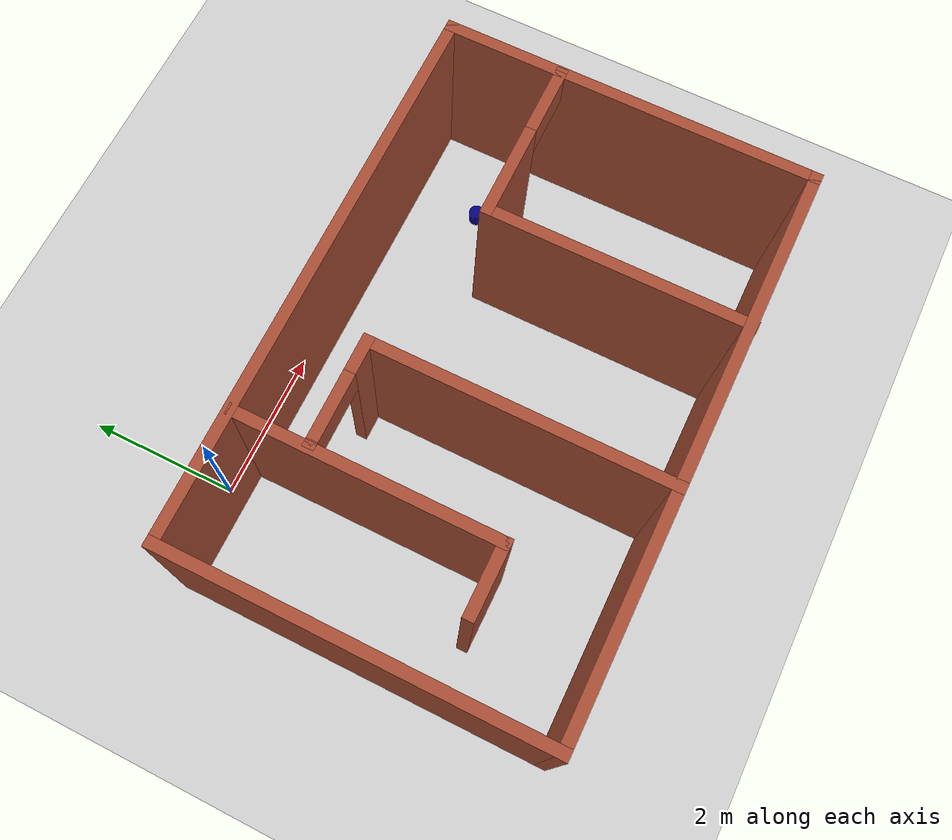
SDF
<sdf version="1.7">
 <world name="custom_world">
  <model name="cylinder1">
   <pose>5 -2.15 0.1 0 0 0</pose>
   <static>false</static>
   <link name="base_link1">
    <inertial>
     <mass>1.0</mass>
     <inertia><ixx>0.01</ixx><iyy>0.01</iyy><izz>0.02</izz><ixy>0.0</ixy><ixz>0.0</ixz><iyz>0.0</iyz></inertia>
    </inertial>
    <visual name="visual1">
     <geometry><cylinder><radius>0.1</radius><length>0.2</length></cylinder></geometry>
     <material><ambient>0 0.5 0 1</ambient></material>
    </visual>
    <collision name="collision1">
     <geometry><cylinder><radius>0.1</radius><length>0.2</length></cylinder></geometry>
    </collision>
   </link>
   <plugin name="cylinder1_plugin" filename="/home/shubham/tb3opnx_ws/devel/lib/libcylinder_plugin.so"/>
  </model>
  <model name="cylinder2">
   <pose>5 -1.15 0.1 0 0 0</pose>
   <static>false</static>
   <link name="base_link2">
    <inertial>
     <mass>1.0</mass>
     <inertia><ixx>0.01</ixx><iyy>0.01</iyy><izz>0.02</izz><ixy>0.0</ixy><ixz>0.0</ixz><iyz>0.0</iyz></inertia>
    </inertial>
    <visual name="visual2">
     <geometry><cylinder><radius>0.1</radius><length>0.2</length></cylinder></geometry>
     <material><ambient>0 0 0.5 1</ambient></material>
    </visual>
    <collision name="collision2">
     <geometry><cylinder><radius>0.1</radius><length>0.2</length></cylinder></geometry>
    </collision>
   </link>
   <plugin name="cylinder2_plugin" filename="/home/shubham/tb3opnx_ws/devel/lib/libcylinder_plugin.so"/>
  </model>
  <light name="sun" type="directional">
   <pose>0 0 10 0 -0 0</pose>
   <diffuse>0.8 0.8 0.8 1</diffuse>
   <specular>0.2 0.2 0.2 1</specular>
   <attenuation>
    <range>1000</range>
    <constant>0.9</constant>
    <linear>0.01</linear>
    <quadratic>0.001</quadratic>
   </attenuation>
   <direction>-0.5 0.1 -0.9</direction>
   <spot><inner_angle>0</inner_angle><outer_angle>0</outer_angle><falloff>0</falloff></spot>
  </light>
  <model name="ground_plane">
   <static>1</static>
   <link name="link">
    <collision name="collision">
     <geometry><plane><normal>0 0 1</normal><size>100 100</size></plane></geometry>
     <surface><friction><ode><mu>100</mu><mu2>50</mu2></ode></friction></surface>
    </collision>
    <visual name="visual">
     <cast_shadows>0</cast_shadows>
     <geometry><plane><normal>0 0 1</normal><size>100 100</size></plane></geometry>
     <material>
      <script><uri>file://media/materials/scripts/gazebo.material</uri><name>Gazebo/Grey</name></script>
     </material>
    </visual>
   </link>
  </model>
  <gravity>0 0 -9.8</gravity>
  <magnetic_field>6e-06 2.3e-05 -4.2e-05</magnetic_field>
  <atmosphere type="adiabatic"/>
  <physics type="ode">
   <max_step_size>0.001</max_step_size>
   <real_time_factor>1</real_time_factor>
   <real_time_update_rate>1000</real_time_update_rate>
  </physics>
  <scene><ambient>0.4 0.4 0.4 1</ambient><background>0.7 0.7 0.7 1</background><shadows>1</shadows></scene>
  <spherical_coordinates>
   <surface_model>EARTH_WGS84</surface_model>
   <latitude_deg>0</latitude_deg>
   <longitude_deg>0</longitude_deg>
   <elevation>0</elevation>
   <heading_deg>0</heading_deg>
  </spherical_coordinates>
  <model name="Maze">
   <pose>2.405 -2.5625 0 0 -0 0</pose>
   <link name="Wall_10">
    <collision name="Wall_10_Collision">
     <geometry><box><size>3.5 0.15 2.5</size></box></geometry>
     <pose>0 0 1.25 0 -0 0</pose>
    </collision>
    <visual name="Wall_10_Visual">
     <pose>0 0 1.25 0 -0 0</pose>
     <geometry><box><size>3.5 0.15 2.5</size></box></geometry>
     <material>
      <script><uri>file://media/materials/scripts/gazebo.material</uri><name>Gazebo/Bricks</name></script>
      <ambient>1 1 1 1</ambient>
     </material>
     <meta><layer>0</layer></meta>
    </visual>
    <pose>-1.985 0.6475 0 0 -0 -1.5708</pose>
   </link>
   <link name="Wall_11">
    <collision name="Wall_11_Collision">
     <geometry><box><size>1 0.15 2.5</size></box></geometry>
     <pose>0 0 1.25 0 -0 0</pose>
    </collision>
    <visual name="Wall_11_Visual">
     <pose>0 0 1.25 0 -0 0</pose>
     <geometry><box><size>1 0.15 2.5</size></box></geometry>
     <material>
      <script><uri>file://media/materials/scripts/gazebo.material</uri><name>Gazebo/Bricks</name></script>
      <ambient>1 1 1 1</ambient>
     </material>
     <meta><layer>0</layer></meta>
    </visual>
    <pose>-2.41 -1.0275 0 0 -0 3.14159</pose>
   </link>
   <link name="Wall_14">
    <collision name="Wall_14_Collision">
     <geometry><box><size>4 0.15 2.5</size></box></geometry>
     <pose>0 0 1.25 0 -0 0</pose>
    </collision>
    <visual name="Wall_14_Visual">
     <pose>0 0 1.25 0 -0 0</pose>
     <geometry><box><size>4 0.15 2.5</size></box></geometry>
     <material>
      <script><uri>file://media/materials/scripts/gazebo.material</uri><name>Gazebo/Bricks</name></script>
      <ambient>1 1 1 1</ambient>
     </material>
     <meta><layer>0</layer></meta>
    </visual>
    <pose>-0.575 -0.5525 0 0 -0 1.5708</pose>
   </link>
   <link name="Wall_15">
    <pose>-1.25 1.3725 0 0 -0 3.14159</pose>
    <visual name="Wall_15_Visual_0">
     <pose>-0.5025 0 1.25 0 -0 0</pose>
     <geometry><box><size>0.495 0.15 2.5</size></box></geometry>
     <material>
      <script><uri>file://media/materials/scripts/gazebo.material</uri><name>Gazebo/Bricks</name></script>
      <ambient>1 1 1 1</ambient>
     </material>
     <meta><layer>0</layer></meta>
    </visual>
    <collision name="Wall_15_Collision_0">
     <geometry><box><size>0.495 0.15 2.5</size></box></geometry>
     <pose>-0.5025 0 1.25 0 -0 0</pose>
    </collision>
    <visual name="Wall_15_Visual_1">
     <pose>0.6975 0 1.25 0 -0 0</pose>
     <geometry><box><size>0.105 0.15 2.5</size></box></geometry>
     <material>
      <script><uri>file://media/materials/scripts/gazebo.material</uri><name>Gazebo/Bricks</name></script>
      <ambient>1 1 1 1</ambient>
     </material>
     <meta><layer>0</layer></meta>
    </visual>
    <collision name="Wall_15_Collision_1">
     <geometry><box><size>0.105 0.15 2.5</size></box></geometry>
     <pose>0.6975 0 1.25 0 -0 0</pose>
    </collision>
    <visual name="Wall_15_Visual_2">
     <pose>0.195 0 2.25 0 -0 0</pose>
     <geometry><box><size>0.9 0.15 0.5</size></box></geometry>
     <material>
      <script><uri>file://media/materials/scripts/gazebo.material</uri><name>Gazebo/Bricks</name></script>
      <ambient>1 1 1 1</ambient>
     </material>
     <meta><layer>0</layer></meta>
    </visual>
    <collision name="Wall_15_Collision_2">
     <geometry><box><size>0.9 0.15 0.5</size></box></geometry>
     <pose>0.195 0 2.25 0 -0 0</pose>
    </collision>
   </link>
   <link name="Wall_17">
    <collision name="Wall_17_Collision">
     <geometry><box><size>3.5 0.15 2.5</size></box></geometry>
     <pose>0 0 1.25 0 -0 0</pose>
    </collision>
    <visual name="Wall_17_Visual">
     <pose>0 0 1.25 0 -0 0</pose>
     <geometry><box><size>3.5 0.15 2.5</size></box></geometry>
     <material>
      <script><uri>file://media/materials/scripts/gazebo.material</uri><name>Gazebo/Bricks</name></script>
      <ambient>1 1 1 1</ambient>
     </material>
     <meta><layer>0</layer></meta>
    </visual>
    <pose>1.555 -0.8125 0 0 -0 1.5708</pose>
   </link>
   <link name="Wall_18">
    <pose>2.605 0.8625 0 0 -0 0</pose>
    <visual name="Wall_18_Visual_0">
     <pose>-0.4775 0 1.25 0 -0 0</pose>
     <geometry><box><size>1.295 0.15 2.5</size></box></geometry>
     <material>
      <script><uri>file://media/materials/scripts/gazebo.material</uri><name>Gazebo/Bricks</name></script>
      <ambient>1 1 1 1</ambient>
     </material>
     <meta><layer>0</layer></meta>
    </visual>
    <collision name="Wall_18_Collision_0">
     <geometry><box><size>1.295 0.15 2.5</size></box></geometry>
     <pose>-0.4775 0 1.25 0 -0 0</pose>
    </collision>
    <visual name="Wall_18_Visual_1">
     <pose>1.0975 0 1.25 0 -0 0</pose>
     <geometry><box><size>0.055 0.15 2.5</size></box></geometry>
     <material>
      <script><uri>file://media/materials/scripts/gazebo.material</uri><name>Gazebo/Bricks</name></script>
      <ambient>1 1 1 1</ambient>
     </material>
     <meta><layer>0</layer></meta>
    </visual>
    <collision name="Wall_18_Collision_1">
     <geometry><box><size>0.055 0.15 2.5</size></box></geometry>
     <pose>1.0975 0 1.25 0 -0 0</pose>
    </collision>
    <visual name="Wall_18_Visual_2">
     <pose>0.62 0 2.25 0 -0 0</pose>
     <geometry><box><size>0.9 0.15 0.5</size></box></geometry>
     <material>
      <script><uri>file://media/materials/scripts/gazebo.material</uri><name>Gazebo/Bricks</name></script>
      <ambient>1 1 1 1</ambient>
     </material>
     <meta><layer>0</layer></meta>
    </visual>
    <collision name="Wall_18_Collision_2">
     <geometry><box><size>0.9 0.15 0.5</size></box></geometry>
     <pose>0.62 0 2.25 0 -0 0</pose>
    </collision>
   </link>
   <link name="Wall_4">
    <collision name="Wall_4_Collision">
     <geometry><box><size>7.5 0.15 2.5</size></box></geometry>
     <pose>0 0 1.25 0 -0 0</pose>
    </collision>
    <visual name="Wall_4_Visual">
     <pose>0 0 1.25 0 -0 0</pose>
     <geometry><box><size>7.5 0.15 2.5</size></box></geometry>
     <material>
      <script><uri>file://media/materials/scripts/gazebo.material</uri><name>Gazebo/Bricks</name></script>
      <ambient>1 1 1 1</ambient>
     </material>
     <meta><layer>0</layer></meta>
    </visual>
    <pose>0 -2.4775 0 0 -0 0</pose>
   </link>
   <link name="Wall_5">
    <collision name="Wall_5_Collision">
     <geometry><box><size>5 0.15 2.5</size></box></geometry>
     <pose>0 0 1.25 0 -0 0</pose>
    </collision>
    <visual name="Wall_5_Visual">
     <pose>0 0 1.25 0 -0 0</pose>
     <geometry><box><size>5 0.15 2.5</size></box></geometry>
     <material>
      <script><uri>file://media/materials/scripts/gazebo.material</uri><name>Gazebo/Bricks</name></script>
      <ambient>1 1 1 1</ambient>
     </material>
     <meta><layer>0</layer></meta>
    </visual>
    <pose>3.675 -0.0525 0 0 -0 1.5708</pose>
   </link>
   <link name="Wall_7">
    <collision name="Wall_7_Collision">
     <geometry><box><size>5 0.15 2.5</size></box></geometry>
     <pose>0 0 1.25 0 -0 0</pose>
    </collision>
    <visual name="Wall_7_Visual">
     <pose>0 0 1.25 0 -0 0</pose>
     <geometry><box><size>5 0.15 2.5</size></box></geometry>
     <material>
      <script><uri>file://media/materials/scripts/gazebo.material</uri><name>Gazebo/Bricks</name></script>
      <ambient>1 1 1 1</ambient>
     </material>
     <meta><layer>0</layer></meta>
    </visual>
    <pose>-3.675 -0.0525 0 0 -0 1.5708</pose>
   </link>
   <link name="Wall_8">
    <collision name="Wall_8_Collision">
     <geometry><box><size>7.5 0.15 2.5</size></box></geometry>
     <pose>0 0 1.25 0 -0 0</pose>
    </collision>
    <visual name="Wall_8_Visual">
     <pose>0 0 1.25 0 -0 0</pose>
     <geometry><box><size>7.5 0.15 2.5</size></box></geometry>
     <material>
      <script><uri>file://media/materials/scripts/gazebo.material</uri><name>Gazebo/Bricks</name></script>
      <ambient>1 1 1 1</ambient>
     </material>
     <meta><layer>0</layer></meta>
    </visual>
    <pose>0 2.3725 0 0 -0 0</pose>
   </link>
   <static>1</static>
  </model>
 </world>
</sdf>
